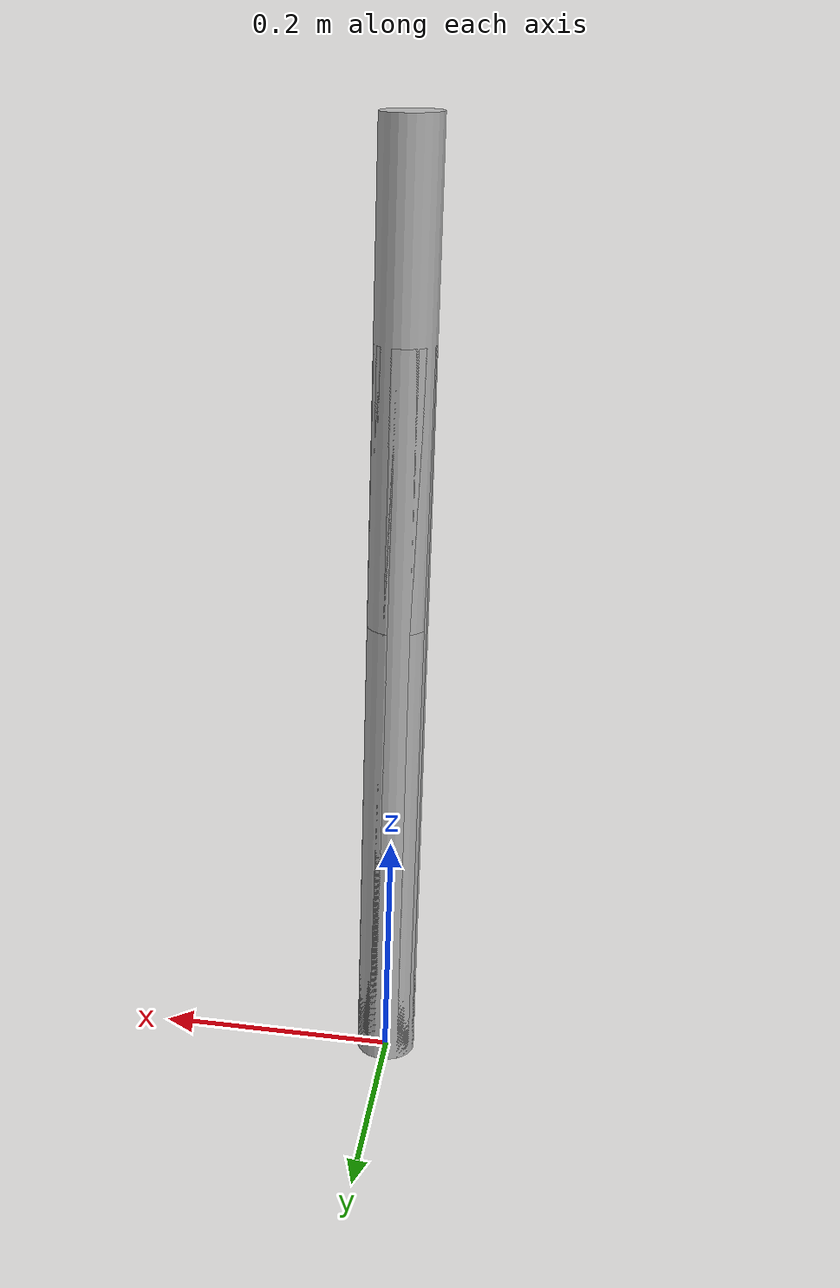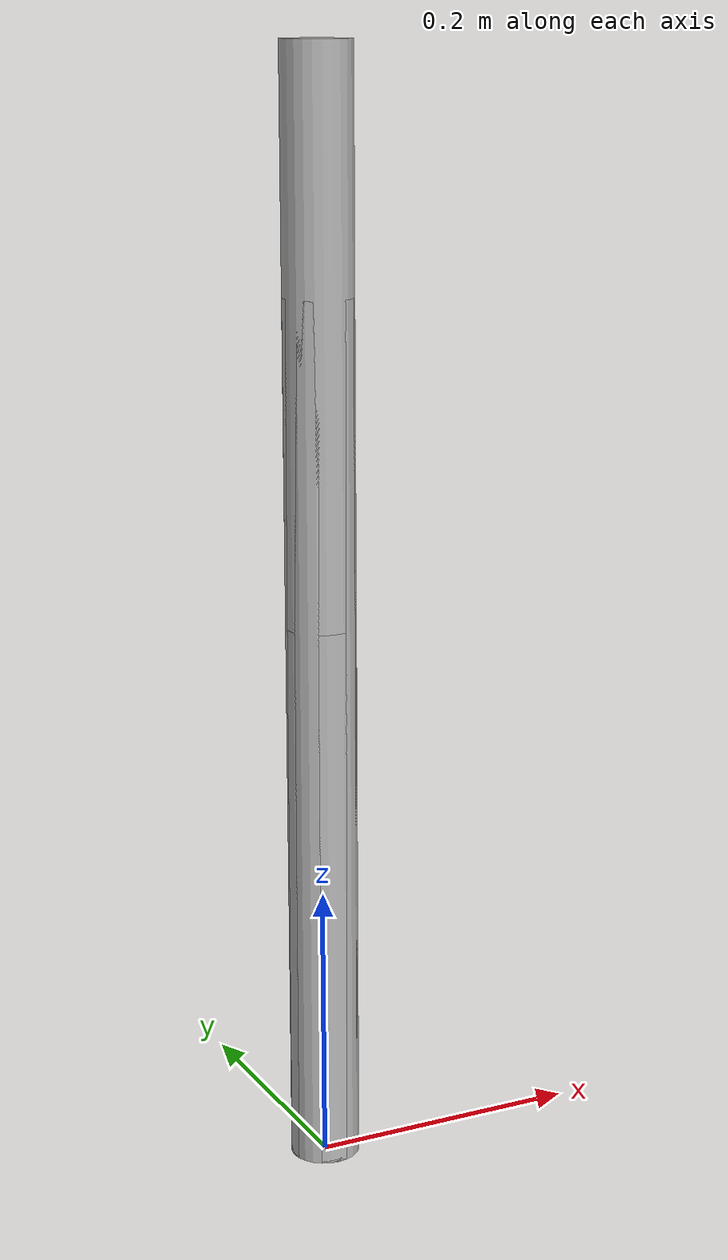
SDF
<?xml version="1.0" ?>
<sdf version='1.4'>
    <model name='rabbit'>

        <joint name="grounding" type="fixed">
            <parent>world</parent>
            <child>torso</child>
            <pose>0 0 0 0 0 0</pose>
        </joint>

        <link name='torso'>
            <pose>0 0 0 0 -0 0</pose>
            <inertial>
                <pose>0 0 0.24 0 -0 0</pose>
                <mass>12</mass>
                <inertia>
                    <ixx>0</ixx>
                    <ixy>0</ixy>
                    <ixz>0</ixz>
                    <iyy>1.33</iyy>
                    <iyz>0</iyz>
                    <izz>0</izz>
                </inertia>
            </inertial>
            <collision name="torso_collision">
                <geometry>
                    <cylinder>
                        <length>0.63</length>
                        <radius>0.025</radius>
                    </cylinder>
                </geometry>
            </collision>
            <visual name='torso_visual'>
                <pose>0 0 0.315 0 -0 0</pose>
                <geometry>
                    <cylinder>
                        <length>0.63</length>
                        <radius>0.025</radius>
                    </cylinder>
                </geometry>
            </visual>
        </link>
        <link name='left_thigh'>
            <pose>0 0 0 0 -0 0</pose>
            <inertial>
                <pose>0 0 0.11 0 -0 0</pose>
                <mass>6.8</mass>
                <inertia>
                    <ixx>0</ixx>
                    <ixy>0</ixy>
                    <ixz>0</ixz>
                    <iyy>0.47</iyy>
                    <iyz>0</iyz>
                    <izz>0</izz>
                </inertia>
            </inertial>
            <collision name="left_thigh_collision">
                <geometry>
                    <cylinder>
                        <length>0.4</length>
                        <radius>0.025</radius>
                    </cylinder>
                </geometry>
            </collision>
            <visual name='left_thigh_visual'>
                <pose>0 0 0.2 0 -0 0</pose>
                <geometry>
                    <cylinder>
                        <length>0.4</length>
                        <radius>0.025</radius>
                    </cylinder>
                </geometry>
            </visual>
        </link>
        <joint name='q1_left' type='revolute'>
            <child>left_thigh</child>
            <parent>torso</parent>
            <axis>
                <xyz>0 1 0</xyz>
                <limit>
                    <lower>-1e+16</lower>
                    <upper>1e+16</upper>
                </limit>
                <dynamics>
                    <spring_reference>0</spring_reference>
                    <spring_stiffness>0</spring_stiffness>
                </dynamics>
                <use_parent_model_frame>1</use_parent_model_frame>
            </axis>
        </joint>
        <link name='left_shin'>
            <pose>0 0 0.4 0 -0 0</pose>
            <inertial>
                <pose>0 0 0.24 0 -0 0</pose>
                <mass>3.2</mass>
                <inertia>
                    <ixx>0</ixx>
                    <ixy>0</ixy>
                    <ixz>0</ixz>
                    <iyy>0.2</iyy>
                    <iyz>0</iyz>
                    <izz>0</izz>
                </inertia>
            </inertial>
            <collision name="left_shin_collision">
                <geometry>
                    <cylinder>
                        <length>0.4</length>
                        <radius>0.025</radius>
                    </cylinder>
                </geometry>
            </collision>
            <visual name='left_shin_visual'>
                <pose>0 0 0.2 0 -0 0</pose>
                <geometry>
                    <cylinder>
                        <length>0.4</length>
                        <radius>0.025</radius>
                    </cylinder>
                </geometry>
            </visual>
        </link>
        <joint name='q2_left' type='revolute'>
            <child>left_shin</child>
            <parent>left_thigh</parent>
            <axis>
                <xyz>0 1 0</xyz>
                <limit>
                    <lower>-1e+16</lower>
                    <upper>1e+16</upper>
                </limit>
                <dynamics>
                    <spring_reference>0</spring_reference>
                    <spring_stiffness>0</spring_stiffness>
                </dynamics>
                <use_parent_model_frame>1</use_parent_model_frame>
            </axis>
        </joint>
        <link name='right_thigh'>
            <pose>0 0 0 0 -0 0</pose>
            <inertial>
                <pose>0 0 0.11 0 -0 0</pose>
                <mass>6.8</mass>
                <inertia>
                    <ixx>0</ixx>
                    <ixy>0</ixy>
                    <ixz>0</ixz>
                    <iyy>0.47</iyy>
                    <iyz>0</iyz>
                    <izz>0</izz>
                </inertia>
            </inertial>
            <collision name="right_thigh_collision">
                <geometry>
                    <cylinder>
                        <length>0.4</length>
                        <radius>0.025</radius>
                    </cylinder>
                </geometry>
            </collision>
            <visual name='right_thigh_visual'>
                <pose>0 0 0.2 0 0 0</pose>
                <geometry>
                    <cylinder>
                        <length>0.4</length>
                        <radius>0.025</radius>
                    </cylinder>
                </geometry>
            </visual>
        </link>
        <joint name='q1_right' type='revolute'>
            <child>right_thigh</child>
            <parent>torso</parent>
            <axis>
                <initial_position>0.5</initial_position>
                <xyz>0 1 0</xyz>
                <limit>
                    <lower>-1e+16</lower>
                    <upper>1e+16</upper>
                </limit>
                <dynamics>
                    <spring_reference>0</spring_reference>
                    <spring_stiffness>0</spring_stiffness>
                </dynamics>
                <use_parent_model_frame>1</use_parent_model_frame>
            </axis>
        </joint>
        <link name='right_shin'>
            <pose>0 0 0.4 0 -0 0</pose>
            <inertial>
                <pose>0 0 0.24 0 -0 0</pose>
                <mass>3.2</mass>
                <inertia>
                    <ixx>0</ixx>
                    <ixy>0</ixy>
                    <ixz>0</ixz>
                    <iyy>0.2</iyy>
                    <iyz>0</iyz>
                    <izz>0</izz>
                </inertia>
            </inertial>
            <collision name="right_shin_collision">
                <geometry>
                    <cylinder>
                        <length>0.4</length>
                        <radius>0.025</radius>
                    </cylinder>
                </geometry>
            </collision>
            <visual name='right_shin_visual'>
                <pose>0 0 0.2 0 -0 0</pose>
                <geometry>
                    <cylinder>
                        <length>0.4</length>
                        <radius>0.025</radius>
                    </cylinder>
                </geometry>
            </visual>
        </link>
        <joint name='q2_right' type='revolute'>
            <child>right_shin</child>
            <parent>right_thigh</parent>
            <axis>
                <initial_position>1.0</initial_position>
                <xyz>0 1 0</xyz>
                <limit>
                    <lower>-1e+16</lower>
                    <upper>1e+16</upper>
                </limit>
                <dynamics>
                    <spring_reference>0</spring_reference>
                    <spring_stiffness>0</spring_stiffness>
                </dynamics>
                <use_parent_model_frame>1</use_parent_model_frame>
            </axis>
        </joint>
    </model>
</sdf>
